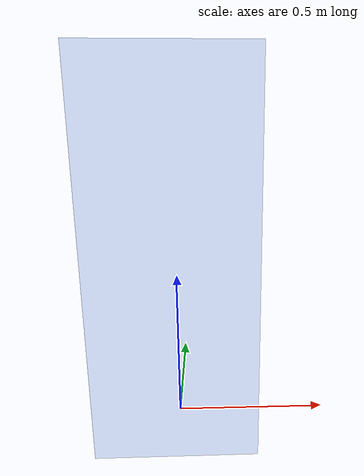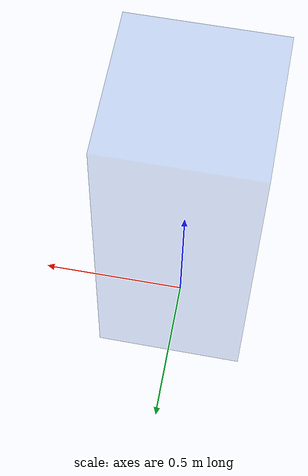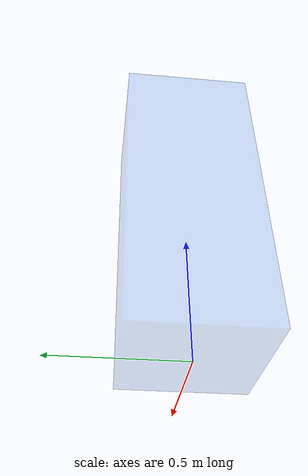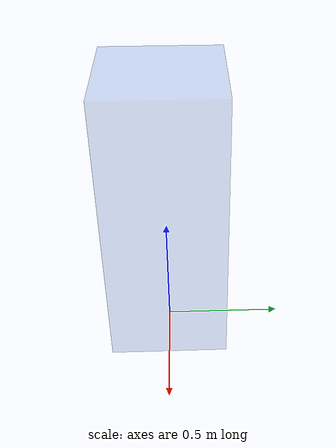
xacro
<?xml version="1.0"?>
<robot name="waiter_bot" xmlns:xacro="http://ros.org/wiki/xacro">
    <!-- Base -->
    <link name="base_link">
        <visual>
            <geometry>
                <box size="0.50 0.50 1.2"/>
                <!-- 50cm x 50cm x 30cm -->
            </geometry>
            <origin xyz="0 0 0.60"/>
            <!-- half the height up, base sits on z=0 -->
            <material name="blue_wire">
                <color rgba="0.0 0.3 0.8 0.15"/>
            </material>
        </visual>
        <collision>
            <geometry>
                <box size="0.50 0.50 1.2"/>
            </geometry>
            <origin xyz="0 0 0.6"/>
            <!-- same offset for collision -->
        </collision>
    </link>
    <!-- IMU link -->
    <link name="imu_link">
        <visual>
            <geometry>
                <sphere radius="0.02"/>
            </geometry>
            <origin xyz="0 0 0.02"/>
            <material name="green_wire">
                <color rgba="0.0 1.0 0.0 0.4"/>
            </material>
        </visual>
    </link>
    <joint name="base_to_imu" type="fixed">
        <parent link="base_link"/>
        <child link="imu_link"/>
        <origin xyz="0.00 -0.20 0.20" rpy="0 0 0"/>
    </joint>
    <!-- LiDAR link -->
    <link name="laser_frame">
        <visual>
            <geometry>
                <cylinder radius="0.04" length="0.05"/>
            </geometry>
            <origin xyz="0 0 0.05" rpy="1.5708 0 0"/>
            <material name="red_wire">
                <color rgba="1.0 0.0 0.0 0.4"/>
            </material>
        </visual>
    </link>
    <joint name="base_to_laser" type="fixed">
        <parent link="base_link"/>
        <child link="laser_frame"/>
        <origin xyz="0.15 0.00 0.20" rpy="0 0 3.1416"/>
        <!-- 5cm inside front edge -->
    </joint>
    <!-- Base footprint for navigation / SLAM -->
    <link name="base_footprint">
        <visual>
            <geometry>
                <sphere radius="0.001"/>
                <!-- invisible tiny marker -->
            </geometry>
            <material name="clear">
                <color rgba="0 0 0 0"/>
            </material>
        </visual>
    </link>
    <!-- base_footprint lies on the ground at z = 0 -->
    <joint name="base_footprint_to_base_link" type="fixed">
        <parent link="base_footprint"/>
        <child link="base_link"/>
        <origin xyz="0 0 0" rpy="0 0 0"/>
    </joint>
</robot>
